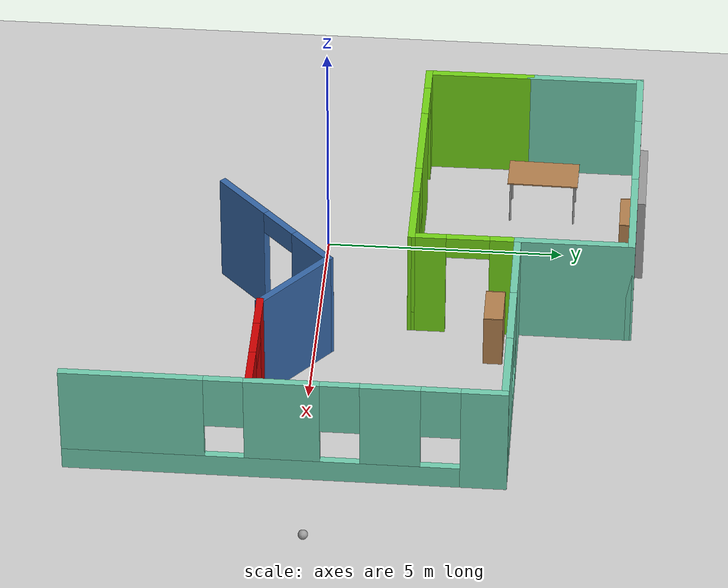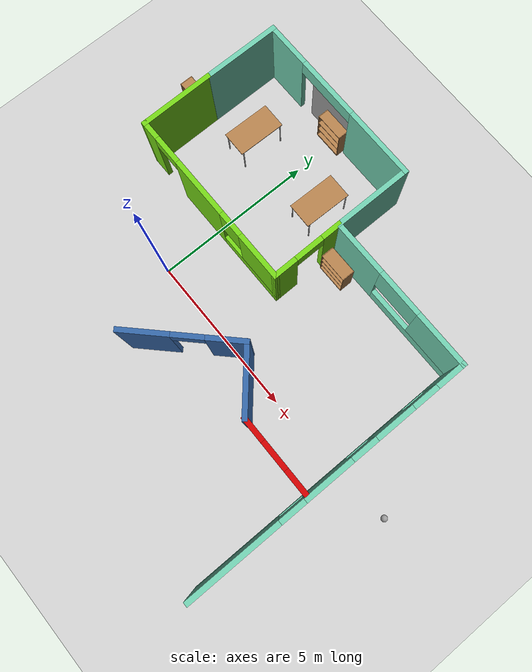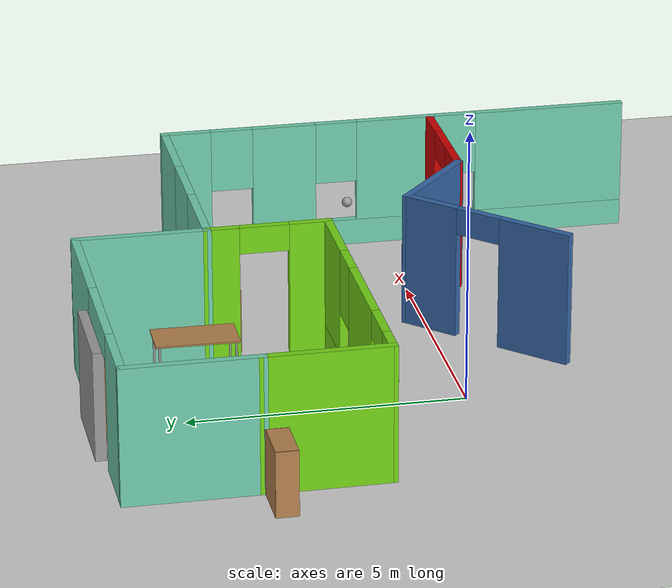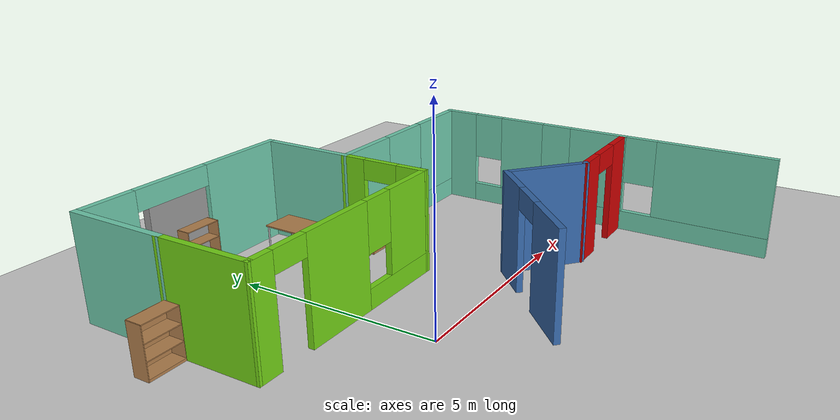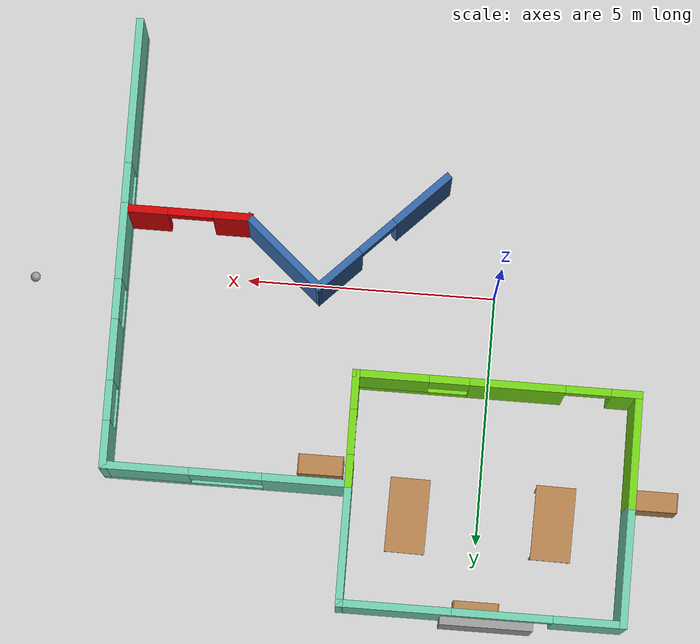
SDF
<sdf version="1.6">
 <world name="default">
  <model name="ground_plane">
   <static>1</static>
   <link name="link">
    <collision name="collision">
     <geometry><plane><normal>0 0 1</normal><size>100 100</size></plane></geometry>
     <surface>
      <contact><collide_bitmask>65535</collide_bitmask></contact>
      <friction><ode><mu>100</mu><mu2>50</mu2></ode></friction>
     </surface>
    </collision>
    <visual name="visual">
     <cast_shadows>0</cast_shadows>
     <geometry><plane><normal>0 0 1</normal><size>100 100</size></plane></geometry>
     <material>
      <script><uri>file://media/materials/scripts/gazebo.material</uri><name>Gazebo/Grey</name></script>
     </material>
    </visual>
   </link>
  </model>
  <model name="model">
   <pose>-1.34408 -2.0758 0 0 -0 0</pose>
   <link name="Door_1">
    <collision name="Door_1_Collision">
     <geometry><box><size>1.8483 0.2 2</size></box></geometry>
     <pose>0 0 1 0 -0 0</pose>
    </collision>
    <visual name="Door_1_Visual">
     <pose>0 0 1 0 -0 0</pose>
     <geometry><box><size>1.8483 0.2 2</size></box></geometry>
     <material>
      <script><uri>file://media/materials/scripts/gazebo.material</uri><name>Gazebo/Grey</name></script>
     </material>
    </visual>
    <pose>1.0621 8.71185 0 0 -0 0</pose>
   </link>
   <link name="Wall_10">
    <pose>6.41224 6.21961 0 0 -0 0</pose>
    <visual name="Wall_10_Visual_0">
     <pose>-1.6072 0 1.25 0 -0 0</pose>
     <geometry><box><size>1.78559 0.15 2.5</size></box></geometry>
     <material>
      <script><uri>file://media/materials/scripts/gazebo.material</uri><name>Gazebo/Grey</name></script>
      <ambient>0.435294 0.796078 0.67451 1</ambient>
     </material>
     <meta><layer>0</layer></meta>
    </visual>
    <collision name="Wall_10_Collision_0">
     <geometry><box><size>1.78559 0.15 2.5</size></box></geometry>
     <pose>-1.6072 0 1.25 0 -0 0</pose>
    </collision>
    <visual name="Wall_10_Visual_1">
     <pose>0.892797 0 0.25 0 -0 0</pose>
     <geometry><box><size>3.21441 0.15 0.5</size></box></geometry>
     <material>
      <script><uri>file://media/materials/scripts/gazebo.material</uri><name>Gazebo/Grey</name></script>
      <ambient>0.435294 0.796078 0.67451 1</ambient>
     </material>
     <meta><layer>0</layer></meta>
    </visual>
    <collision name="Wall_10_Collision_1">
     <geometry><box><size>3.21441 0.15 0.5</size></box></geometry>
     <pose>0.892797 0 0.25 0 -0 0</pose>
    </collision>
    <visual name="Wall_10_Visual_2">
     <pose>1.61399 0 1.5 0 -0 0</pose>
     <geometry><box><size>1.77201 0.15 2</size></box></geometry>
     <material>
      <script><uri>file://media/materials/scripts/gazebo.material</uri><name>Gazebo/Grey</name></script>
      <ambient>0.435294 0.796078 0.67451 1</ambient>
     </material>
     <meta><layer>0</layer></meta>
    </visual>
    <collision name="Wall_10_Collision_2">
     <geometry><box><size>1.77201 0.15 2</size></box></geometry>
     <pose>1.61399 0 1.5 0 -0 0</pose>
    </collision>
    <visual name="Wall_10_Visual_3">
     <pose>0.006791 0 1.9 0 -0 0</pose>
     <geometry><box><size>1.4424 0.15 1.2</size></box></geometry>
     <material>
      <script><uri>file://media/materials/scripts/gazebo.material</uri><name>Gazebo/Grey</name></script>
      <ambient>0.435294 0.796078 0.67451 1</ambient>
     </material>
     <meta><layer>0</layer></meta>
    </visual>
    <collision name="Wall_10_Collision_3">
     <geometry><box><size>1.4424 0.15 1.2</size></box></geometry>
     <pose>0.006791 0 1.9 0 -0 0</pose>
    </collision>
   </link>
   <link name="Wall_11">
    <pose>8.83724 1.79461 0 0 -0 -1.5708</pose>
    <visual name="Wall_11_Visual_0">
     <pose>-4.02485 0 1.25 0 -0 0</pose>
     <geometry><box><size>0.950301 0.15 2.5</size></box></geometry>
     <material>
      <script><uri>file://media/materials/scripts/gazebo.material</uri><name>Gazebo/Grey</name></script>
      <ambient>0.435294 0.796078 0.67451 1</ambient>
     </material>
     <meta><layer>0</layer></meta>
    </visual>
    <collision name="Wall_11_Collision_0">
     <geometry><box><size>0.950301 0.15 2.5</size></box></geometry>
     <pose>-4.02485 0 1.25 0 -0 0</pose>
    </collision>
    <visual name="Wall_11_Visual_1">
     <pose>0.47515 0 0.25 0 -0 0</pose>
     <geometry><box><size>8.0497 0.15 0.5</size></box></geometry>
     <material>
      <script><uri>file://media/materials/scripts/gazebo.material</uri><name>Gazebo/Grey</name></script>
      <ambient>0.435294 0.796078 0.67451 1</ambient>
     </material>
     <meta><layer>0</layer></meta>
    </visual>
    <collision name="Wall_11_Collision_1">
     <geometry><box><size>8.0497 0.15 0.5</size></box></geometry>
     <pose>0.47515 0 0.25 0 -0 0</pose>
    </collision>
    <visual name="Wall_11_Visual_2">
     <pose>-2.14022 0 1.5 0 -0 0</pose>
     <geometry><box><size>1.21896 0.15 2</size></box></geometry>
     <material>
      <script><uri>file://media/materials/scripts/gazebo.material</uri><name>Gazebo/Grey</name></script>
      <ambient>0.435294 0.796078 0.67451 1</ambient>
     </material>
     <meta><layer>0</layer></meta>
    </visual>
    <collision name="Wall_11_Collision_2">
     <geometry><box><size>1.21896 0.15 2</size></box></geometry>
     <pose>-2.14022 0 1.5 0 -0 0</pose>
    </collision>
    <visual name="Wall_11_Visual_3">
     <pose>0.031685 0 1.5 0 -0 0</pose>
     <geometry><box><size>1.52486 0.15 2</size></box></geometry>
     <material>
      <script><uri>file://media/materials/scripts/gazebo.material</uri><name>Gazebo/Grey</name></script>
      <ambient>0.435294 0.796078 0.67451 1</ambient>
     </material>
     <meta><layer>0</layer></meta>
    </visual>
    <collision name="Wall_11_Collision_3">
     <geometry><box><size>1.52486 0.15 2</size></box></geometry>
     <pose>0.031685 0 1.5 0 -0 0</pose>
    </collision>
    <visual name="Wall_11_Visual_4">
     <pose>3.04706 0 1.5 0 -0 0</pose>
     <geometry><box><size>2.90589 0.15 2</size></box></geometry>
     <material>
      <script><uri>file://media/materials/scripts/gazebo.material</uri><name>Gazebo/Grey</name></script>
      <ambient>0.435294 0.796078 0.67451 1</ambient>
     </material>
     <meta><layer>0</layer></meta>
    </visual>
    <collision name="Wall_11_Collision_4">
     <geometry><box><size>2.90589 0.15 2</size></box></geometry>
     <pose>3.04706 0 1.5 0 -0 0</pose>
    </collision>
    <visual name="Wall_11_Visual_5">
     <pose>-3.1497 0 1.9 0 -0 0</pose>
     <geometry><box><size>0.8 0.15 1.2</size></box></geometry>
     <material>
      <script><uri>file://media/materials/scripts/gazebo.material</uri><name>Gazebo/Grey</name></script>
      <ambient>0.435294 0.796078 0.67451 1</ambient>
     </material>
     <meta><layer>0</layer></meta>
    </visual>
    <collision name="Wall_11_Collision_5">
     <geometry><box><size>0.8 0.15 1.2</size></box></geometry>
     <pose>-3.1497 0 1.9 0 -0 0</pose>
    </collision>
    <visual name="Wall_11_Visual_6">
     <pose>-1.13074 0 1.9 0 -0 0</pose>
     <geometry><box><size>0.8 0.15 1.2</size></box></geometry>
     <material>
      <script><uri>file://media/materials/scripts/gazebo.material</uri><name>Gazebo/Grey</name></script>
      <ambient>0.435294 0.796078 0.67451 1</ambient>
     </material>
     <meta><layer>0</layer></meta>
    </visual>
    <collision name="Wall_11_Collision_6">
     <geometry><box><size>0.8 0.15 1.2</size></box></geometry>
     <pose>-1.13074 0 1.9 0 -0 0</pose>
    </collision>
    <visual name="Wall_11_Visual_7">
     <pose>1.19411 0 1.9 0 -0 0</pose>
     <geometry><box><size>0.8 0.15 1.2</size></box></geometry>
     <material>
      <script><uri>file://media/materials/scripts/gazebo.material</uri><name>Gazebo/Grey</name></script>
      <ambient>0.435294 0.796078 0.67451 1</ambient>
     </material>
     <meta><layer>0</layer></meta>
    </visual>
    <collision name="Wall_11_Collision_7">
     <geometry><box><size>0.8 0.15 1.2</size></box></geometry>
     <pose>1.19411 0 1.9 0 -0 0</pose>
    </collision>
   </link>
   <link name="Wall_35">
    <pose>3.69031 1.19128 0 0 -0 0.785398</pose>
    <visual name="Wall_35_Visual_0">
     <pose>-1.02961 0 1.25 0 -0 0</pose>
     <geometry><box><size>1.44079 0.15 2.5</size></box></geometry>
     <material>
      <script><uri>file://media/materials/scripts/gazebo.material</uri><name>Gazebo/Grey</name></script>
      <ambient>0.203922 0.396078 0.643137 1</ambient>
     </material>
     <meta><layer>0</layer></meta>
    </visual>
    <collision name="Wall_35_Collision_0">
     <geometry><box><size>1.44079 0.15 2.5</size></box></geometry>
     <pose>-1.02961 0 1.25 0 -0 0</pose>
    </collision>
    <visual name="Wall_35_Visual_1">
     <pose>1.17039 0 1.25 0 -0 0</pose>
     <geometry><box><size>1.15921 0.15 2.5</size></box></geometry>
     <material>
      <script><uri>file://media/materials/scripts/gazebo.material</uri><name>Gazebo/Grey</name></script>
      <ambient>0.203922 0.396078 0.643137 1</ambient>
     </material>
     <meta><layer>0</layer></meta>
    </visual>
    <collision name="Wall_35_Collision_1">
     <geometry><box><size>1.15921 0.15 2.5</size></box></geometry>
     <pose>1.17039 0 1.25 0 -0 0</pose>
    </collision>
    <visual name="Wall_35_Visual_2">
     <pose>0.140787 0 2.25 0 -0 0</pose>
     <geometry><box><size>0.9 0.15 0.5</size></box></geometry>
     <material>
      <script><uri>file://media/materials/scripts/gazebo.material</uri><name>Gazebo/Grey</name></script>
      <ambient>0.203922 0.396078 0.643137 1</ambient>
     </material>
     <meta><layer>0</layer></meta>
    </visual>
    <collision name="Wall_35_Collision_2">
     <geometry><box><size>0.9 0.15 0.5</size></box></geometry>
     <pose>0.140787 0 2.25 0 -0 0</pose>
    </collision>
   </link>
   <link name="Wall_37">
    <pose>1.19907 4.02731 0 0 -0 0</pose>
    <visual name="Wall_37_Visual_0">
     <pose>-2.56055 0 1.25 0 -0 0</pose>
     <geometry><box><size>0.628904 0.15 2.5</size></box></geometry>
     <material>
      <script><uri>file://media/materials/scripts/gazebo.material</uri><name>Gazebo/Grey</name></script>
      <ambient>0.45098 0.823529 0.0862745 1</ambient>
     </material>
     <meta><layer>0</layer></meta>
    </visual>
    <collision name="Wall_37_Collision_0">
     <geometry><box><size>0.628904 0.15 2.5</size></box></geometry>
     <pose>-2.56055 0 1.25 0 -0 0</pose>
    </collision>
    <visual name="Wall_37_Visual_1">
     <pose>-0.397199 0 1.25 0 -0 0</pose>
     <geometry><box><size>1.89779 0.15 2.5</size></box></geometry>
     <material>
      <script><uri>file://media/materials/scripts/gazebo.material</uri><name>Gazebo/Grey</name></script>
      <ambient>0.45098 0.823529 0.0862745 1</ambient>
     </material>
     <meta><layer>0</layer></meta>
    </visual>
    <collision name="Wall_37_Collision_1">
     <geometry><box><size>1.89779 0.15 2.5</size></box></geometry>
     <pose>-0.397199 0 1.25 0 -0 0</pose>
    </collision>
    <visual name="Wall_37_Visual_2">
     <pose>1.71335 0 0.25 0 -0 0</pose>
     <geometry><box><size>2.3233 0.15 0.5</size></box></geometry>
     <material>
      <script><uri>file://media/materials/scripts/gazebo.material</uri><name>Gazebo/Grey</name></script>
      <ambient>0.45098 0.823529 0.0862745 1</ambient>
     </material>
     <meta><layer>0</layer></meta>
    </visual>
    <collision name="Wall_37_Collision_2">
     <geometry><box><size>2.3233 0.15 0.5</size></box></geometry>
     <pose>1.71335 0 0.25 0 -0 0</pose>
    </collision>
    <visual name="Wall_37_Visual_3">
     <pose>2.11335 0 1.5 0 -0 0</pose>
     <geometry><box><size>1.5233 0.15 2</size></box></geometry>
     <material>
      <script><uri>file://media/materials/scripts/gazebo.material</uri><name>Gazebo/Grey</name></script>
      <ambient>0.45098 0.823529 0.0862745 1</ambient>
     </material>
     <meta><layer>0</layer></meta>
    </visual>
    <collision name="Wall_37_Collision_3">
     <geometry><box><size>1.5233 0.15 2</size></box></geometry>
     <pose>2.11335 0 1.5 0 -0 0</pose>
    </collision>
    <visual name="Wall_37_Visual_4">
     <pose>0.951698 0 1.9 0 -0 0</pose>
     <geometry><box><size>0.8 0.15 1.2</size></box></geometry>
     <material>
      <script><uri>file://media/materials/scripts/gazebo.material</uri><name>Gazebo/Grey</name></script>
      <ambient>0.45098 0.823529 0.0862745 1</ambient>
     </material>
     <meta><layer>0</layer></meta>
    </visual>
    <collision name="Wall_37_Collision_4">
     <geometry><box><size>0.8 0.15 1.2</size></box></geometry>
     <pose>0.951698 0 1.9 0 -0 0</pose>
    </collision>
    <visual name="Wall_37_Visual_5">
     <pose>-1.7961 0 2.25 0 -0 0</pose>
     <geometry><box><size>0.9 0.15 0.5</size></box></geometry>
     <material>
      <script><uri>file://media/materials/scripts/gazebo.material</uri><name>Gazebo/Grey</name></script>
      <ambient>0.45098 0.823529 0.0862745 1</ambient>
     </material>
     <meta><layer>0</layer></meta>
    </visual>
    <collision name="Wall_37_Collision_5">
     <geometry><box><size>0.9 0.15 0.5</size></box></geometry>
     <pose>-1.7961 0 2.25 0 -0 0</pose>
    </collision>
   </link>
   <link name="Wall_38">
    <pose>3.99316 5.12346 0 0 -0 1.57619</pose>
    <visual name="Wall_38_Visual_0">
     <pose>-0.775994 0 1.25 0 -0 0</pose>
     <geometry><box><size>0.790336 0.15 2.5</size></box></geometry>
     <material>
      <script><uri>file://media/materials/scripts/gazebo.material</uri><name>Gazebo/Grey</name></script>
      <ambient>0.45098 0.823529 0.0862745 1</ambient>
     </material>
     <meta><layer>0</layer></meta>
    </visual>
    <collision name="Wall_38_Collision_0">
     <geometry><box><size>0.790336 0.15 2.5</size></box></geometry>
     <pose>-0.775994 0 1.25 0 -0 0</pose>
    </collision>
    <visual name="Wall_38_Visual_1">
     <pose>0.845168 0 1.25 0 -0 0</pose>
     <geometry><box><size>0.651988 0.15 2.5</size></box></geometry>
     <material>
      <script><uri>file://media/materials/scripts/gazebo.material</uri><name>Gazebo/Grey</name></script>
      <ambient>0.45098 0.823529 0.0862745 1</ambient>
     </material>
     <meta><layer>0</layer></meta>
    </visual>
    <collision name="Wall_38_Collision_1">
     <geometry><box><size>0.651988 0.15 2.5</size></box></geometry>
     <pose>0.845168 0 1.25 0 -0 0</pose>
    </collision>
    <visual name="Wall_38_Visual_2">
     <pose>0.069174 0 2.25 0 -0 0</pose>
     <geometry><box><size>0.9 0.15 0.5</size></box></geometry>
     <material>
      <script><uri>file://media/materials/scripts/gazebo.material</uri><name>Gazebo/Grey</name></script>
      <ambient>0.45098 0.823529 0.0862745 1</ambient>
     </material>
     <meta><layer>0</layer></meta>
    </visual>
    <collision name="Wall_38_Collision_2">
     <geometry><box><size>0.9 0.15 0.5</size></box></geometry>
     <pose>0.069174 0 2.25 0 -0 0</pose>
    </collision>
   </link>
   <link name="Wall_40">
    <pose>7.52447 1.10748 0 0 -0 0</pose>
    <visual name="Wall_40_Visual_0">
     <pose>-0.852595 0 1.25 0 -0 0</pose>
     <geometry><box><size>0.794811 0.15 2.5</size></box></geometry>
     <material>
      <script><uri>file://media/materials/scripts/gazebo.material</uri><name>Gazebo/Grey</name></script>
      <ambient>0.8 0 0 1</ambient>
     </material>
     <meta><layer>0</layer></meta>
    </visual>
    <collision name="Wall_40_Collision_0">
     <geometry><box><size>0.794811 0.15 2.5</size></box></geometry>
     <pose>-0.852595 0 1.25 0 -0 0</pose>
    </collision>
    <visual name="Wall_40_Visual_1">
     <pose>0.847405 0 1.25 0 -0 0</pose>
     <geometry><box><size>0.805189 0.15 2.5</size></box></geometry>
     <material>
      <script><uri>file://media/materials/scripts/gazebo.material</uri><name>Gazebo/Grey</name></script>
      <ambient>0.8 0 0 1</ambient>
     </material>
     <meta><layer>0</layer></meta>
    </visual>
    <collision name="Wall_40_Collision_1">
     <geometry><box><size>0.805189 0.15 2.5</size></box></geometry>
     <pose>0.847405 0 1.25 0 -0 0</pose>
    </collision>
    <visual name="Wall_40_Visual_2">
     <pose>-0.005189 0 2.25 0 -0 0</pose>
     <geometry><box><size>0.9 0.15 0.5</size></box></geometry>
     <material>
      <script><uri>file://media/materials/scripts/gazebo.material</uri><name>Gazebo/Grey</name></script>
      <ambient>0.8 0 0 1</ambient>
     </material>
     <meta><layer>0</layer></meta>
    </visual>
    <collision name="Wall_40_Collision_2">
     <geometry><box><size>0.9 0.15 0.5</size></box></geometry>
     <pose>-0.005189 0 2.25 0 -0 0</pose>
    </collision>
   </link>
   <link name="Wall_45">
    <collision name="Wall_45_Collision">
     <geometry><box><size>2.09505 0.15 2.5</size></box></geometry>
     <pose>0 0 1.25 0 -0 0</pose>
    </collision>
    <visual name="Wall_45_Visual">
     <pose>0 0 1.25 0 -0 0</pose>
     <geometry><box><size>2.09505 0.15 2.5</size></box></geometry>
     <material>
      <script><uri>file://media/materials/scripts/gazebo.material</uri><name>Gazebo/Grey</name></script>
      <ambient>0.203922 0.396078 0.643137 1</ambient>
     </material>
     <meta><layer>0</layer></meta>
    </visual>
    <pose>5.6121 1.74158 0 0 -0 2.43136</pose>
   </link>
   <link name="Wall_67">
    <collision name="Wall_67_Collision">
     <geometry><box><size>2.34232 0.15 2.5</size></box></geometry>
     <pose>0 0 1.25 0 -0 0</pose>
    </collision>
    <visual name="Wall_67_Visual">
     <pose>0 0 1.25 0 -0 0</pose>
     <geometry><box><size>2.34232 0.15 2.5</size></box></geometry>
     <material>
      <script><uri>file://media/materials/scripts/gazebo.material</uri><name>Gazebo/Grey</name></script>
      <ambient>0.45098 0.823529 0.0862745 1</ambient>
     </material>
     <meta><layer>0</layer></meta>
    </visual>
    <pose>-1.60684 5.12346 0 0 -0 -1.5654</pose>
   </link>
   <link name="Wall_7">
    <collision name="Wall_7_Collision">
     <geometry><box><size>2.5 0.15 2.5</size></box></geometry>
     <pose>0 0 1.25 0 -0 0</pose>
    </collision>
    <visual name="Wall_7_Visual">
     <pose>0 0 1.25 0 -0 0</pose>
     <geometry><box><size>2.5 0.15 2.5</size></box></geometry>
     <material>
      <script><uri>file://media/materials/scripts/gazebo.material</uri><name>Gazebo/Grey</name></script>
      <ambient>0.435294 0.796078 0.67451 1</ambient>
     </material>
     <meta><layer>0</layer></meta>
    </visual>
    <pose>-1.61276 7.39461 0 0 -0 1.5708</pose>
   </link>
   <link name="Wall_8">
    <pose>1.18724 8.56961 0 0 -0 0</pose>
    <visual name="Wall_8_Visual_0">
     <pose>-2.14386 0 1.25 0 -0 0</pose>
     <geometry><box><size>1.46227 0.15 2.5</size></box></geometry>
     <material>
      <script><uri>file://media/materials/scripts/gazebo.material</uri><name>Gazebo/Grey</name></script>
      <ambient>0.435294 0.796078 0.67451 1</ambient>
     </material>
     <meta><layer>0</layer></meta>
    </visual>
    <collision name="Wall_8_Collision_0">
     <geometry><box><size>1.46227 0.15 2.5</size></box></geometry>
     <pose>-2.14386 0 1.25 0 -0 0</pose>
    </collision>
    <visual name="Wall_8_Visual_1">
     <pose>1.73176 0 1.25 0 -0 0</pose>
     <geometry><box><size>2.28648 0.15 2.5</size></box></geometry>
     <material>
      <script><uri>file://media/materials/scripts/gazebo.material</uri><name>Gazebo/Grey</name></script>
      <ambient>0.435294 0.796078 0.67451 1</ambient>
     </material>
     <meta><layer>0</layer></meta>
    </visual>
    <collision name="Wall_8_Collision_1">
     <geometry><box><size>2.28648 0.15 2.5</size></box></geometry>
     <pose>1.73176 0 1.25 0 -0 0</pose>
    </collision>
    <visual name="Wall_8_Visual_2">
     <pose>-0.412106 0 2.25 0 -0 0</pose>
     <geometry><box><size>2.00125 0.15 0.5</size></box></geometry>
     <material>
      <script><uri>file://media/materials/scripts/gazebo.material</uri><name>Gazebo/Grey</name></script>
      <ambient>0.435294 0.796078 0.67451 1</ambient>
     </material>
     <meta><layer>0</layer></meta>
    </visual>
    <collision name="Wall_8_Collision_2">
     <geometry><box><size>2.00125 0.15 0.5</size></box></geometry>
     <pose>-0.412106 0 2.25 0 -0 0</pose>
    </collision>
   </link>
   <link name="Wall_9">
    <collision name="Wall_9_Collision">
     <geometry><box><size>2.5 0.15 2.5</size></box></geometry>
     <pose>0 0 1.25 0 -0 0</pose>
    </collision>
    <visual name="Wall_9_Visual">
     <pose>0 0 1.25 0 -0 0</pose>
     <geometry><box><size>2.5 0.15 2.5</size></box></geometry>
     <material>
      <script><uri>file://media/materials/scripts/gazebo.material</uri><name>Gazebo/Grey</name></script>
      <ambient>0.435294 0.796078 0.67451 1</ambient>
     </material>
     <meta><layer>0</layer></meta>
    </visual>
    <pose>3.98724 7.39461 0 0 -0 -1.5708</pose>
   </link>
   <static>1</static>
  </model>
  <model name="bookshelf">
   <static>1</static>
   <link name="link">
    <inertial><mass>1</mass></inertial>
    <collision name="back">
     <pose>0 0.005 0.6 0 -0 0</pose>
     <geometry><box><size>0.9 0.01 1.2</size></box></geometry>
    </collision>
    <visual name="visual1">
     <pose>0 0.005 0.6 0 -0 0</pose>
     <geometry><box><size>0.9 0.01 1.2</size></box></geometry>
     <material>
      <script><uri>file://media/materials/scripts/gazebo.material</uri><name>Gazebo/Wood</name></script>
     </material>
    </visual>
    <collision name="left_side">
     <pose>0.45 -0.195 0.6 0 -0 0</pose>
     <geometry><box><size>0.02 0.4 1.2</size></box></geometry>
    </collision>
    <visual name="visual2">
     <pose>0.45 -0.195 0.6 0 -0 0</pose>
     <geometry><box><size>0.02 0.4 1.2</size></box></geometry>
     <material>
      <script><uri>file://media/materials/scripts/gazebo.material</uri><name>Gazebo/Wood</name></script>
     </material>
    </visual>
    <collision name="right_side">
     <pose>-0.45 -0.195 0.6 0 -0 0</pose>
     <geometry><box><size>0.02 0.4 1.2</size></box></geometry>
    </collision>
    <visual name="visual3">
     <pose>-0.45 -0.195 0.6 0 -0 0</pose>
     <geometry><box><size>0.02 0.4 1.2</size></box></geometry>
     <material>
      <script><uri>file://media/materials/scripts/gazebo.material</uri><name>Gazebo/Wood</name></script>
     </material>
    </visual>
    <collision name="bottom">
     <pose>0 -0.195 0.03 0 -0 0</pose>
     <geometry><box><size>0.88 0.4 0.06</size></box></geometry>
    </collision>
    <visual name="visual4">
     <pose>0 -0.195 0.03 0 -0 0</pose>
     <geometry><box><size>0.88 0.4 0.06</size></box></geometry>
     <material>
      <script><uri>file://media/materials/scripts/gazebo.material</uri><name>Gazebo/Wood</name></script>
     </material>
    </visual>
    <collision name="top">
     <pose>0 -0.195 1.19 0 -0 0</pose>
     <geometry><box><size>0.88 0.4 0.02</size></box></geometry>
    </collision>
    <visual name="visual5">
     <pose>0 -0.195 1.19 0 -0 0</pose>
     <geometry><box><size>0.88 0.4 0.02</size></box></geometry>
     <material>
      <script><uri>file://media/materials/scripts/gazebo.material</uri><name>Gazebo/Wood</name></script>
     </material>
    </visual>
    <collision name="low_shelf">
     <pose>0 -0.195 0.43 0 -0 0</pose>
     <geometry><box><size>0.88 0.4 0.02</size></box></geometry>
    </collision>
    <visual name="visual6">
     <pose>0 -0.195 0.43 0 -0 0</pose>
     <geometry><box><size>0.88 0.4 0.02</size></box></geometry>
     <material>
      <script><uri>file://media/materials/scripts/gazebo.material</uri><name>Gazebo/Wood</name></script>
     </material>
    </visual>
    <collision name="high_shelf">
     <pose>0 -0.195 0.8 0 -0 0</pose>
     <geometry><box><size>0.88 0.4 0.02</size></box></geometry>
    </collision>
    <visual name="visual7">
     <pose>0 -0.195 0.8 0 -0 0</pose>
     <geometry><box><size>0.88 0.4 0.02</size></box></geometry>
     <material>
      <script><uri>file://media/materials/scripts/gazebo.material</uri><name>Gazebo/Wood</name></script>
     </material>
    </visual>
   </link>
   <pose>-0.07448 6.59557 0 0 -0 0</pose>
  </model>
  <model name="bookshelf_0">
   <static>1</static>
   <link name="link">
    <inertial><mass>1</mass></inertial>
    <collision name="back">
     <pose>0 0.005 0.6 0 -0 0</pose>
     <geometry><box><size>0.9 0.01 1.2</size></box></geometry>
    </collision>
    <visual name="visual1">
     <pose>0 0.005 0.6 0 -0 0</pose>
     <geometry><box><size>0.9 0.01 1.2</size></box></geometry>
     <material>
      <script><uri>file://media/materials/scripts/gazebo.material</uri><name>Gazebo/Wood</name></script>
     </material>
    </visual>
    <collision name="left_side">
     <pose>0.45 -0.195 0.6 0 -0 0</pose>
     <geometry><box><size>0.02 0.4 1.2</size></box></geometry>
    </collision>
    <visual name="visual2">
     <pose>0.45 -0.195 0.6 0 -0 0</pose>
     <geometry><box><size>0.02 0.4 1.2</size></box></geometry>
     <material>
      <script><uri>file://media/materials/scripts/gazebo.material</uri><name>Gazebo/Wood</name></script>
     </material>
    </visual>
    <collision name="right_side">
     <pose>-0.45 -0.195 0.6 0 -0 0</pose>
     <geometry><box><size>0.02 0.4 1.2</size></box></geometry>
    </collision>
    <visual name="visual3">
     <pose>-0.45 -0.195 0.6 0 -0 0</pose>
     <geometry><box><size>0.02 0.4 1.2</size></box></geometry>
     <material>
      <script><uri>file://media/materials/scripts/gazebo.material</uri><name>Gazebo/Wood</name></script>
     </material>
    </visual>
    <collision name="bottom">
     <pose>0 -0.195 0.03 0 -0 0</pose>
     <geometry><box><size>0.88 0.4 0.06</size></box></geometry>
    </collision>
    <visual name="visual4">
     <pose>0 -0.195 0.03 0 -0 0</pose>
     <geometry><box><size>0.88 0.4 0.06</size></box></geometry>
     <material>
      <script><uri>file://media/materials/scripts/gazebo.material</uri><name>Gazebo/Wood</name></script>
     </material>
    </visual>
    <collision name="top">
     <pose>0 -0.195 1.19 0 -0 0</pose>
     <geometry><box><size>0.88 0.4 0.02</size></box></geometry>
    </collision>
    <visual name="visual5">
     <pose>0 -0.195 1.19 0 -0 0</pose>
     <geometry><box><size>0.88 0.4 0.02</size></box></geometry>
     <material>
      <script><uri>file://media/materials/scripts/gazebo.material</uri><name>Gazebo/Wood</name></script>
     </material>
    </visual>
    <collision name="low_shelf">
     <pose>0 -0.195 0.43 0 -0 0</pose>
     <geometry><box><size>0.88 0.4 0.02</size></box></geometry>
    </collision>
    <visual name="visual6">
     <pose>0 -0.195 0.43 0 -0 0</pose>
     <geometry><box><size>0.88 0.4 0.02</size></box></geometry>
     <material>
      <script><uri>file://media/materials/scripts/gazebo.material</uri><name>Gazebo/Wood</name></script>
     </material>
    </visual>
    <collision name="high_shelf">
     <pose>0 -0.195 0.8 0 -0 0</pose>
     <geometry><box><size>0.88 0.4 0.02</size></box></geometry>
    </collision>
    <visual name="visual7">
     <pose>0 -0.195 0.8 0 -0 0</pose>
     <geometry><box><size>0.88 0.4 0.02</size></box></geometry>
     <material>
      <script><uri>file://media/materials/scripts/gazebo.material</uri><name>Gazebo/Wood</name></script>
     </material>
    </visual>
   </link>
   <pose>3.22894 3.91282 0 0 -0 0</pose>
  </model>
  <model name="bookshelf_1">
   <static>1</static>
   <link name="link">
    <inertial><mass>1</mass></inertial>
    <collision name="back">
     <pose>0 0.005 0.6 0 -0 0</pose>
     <geometry><box><size>0.9 0.01 1.2</size></box></geometry>
    </collision>
    <visual name="visual1">
     <pose>0 0.005 0.6 0 -0 0</pose>
     <geometry><box><size>0.9 0.01 1.2</size></box></geometry>
     <material>
      <script><uri>file://media/materials/scripts/gazebo.material</uri><name>Gazebo/Wood</name></script>
     </material>
    </visual>
    <collision name="left_side">
     <pose>0.45 -0.195 0.6 0 -0 0</pose>
     <geometry><box><size>0.02 0.4 1.2</size></box></geometry>
    </collision>
    <visual name="visual2">
     <pose>0.45 -0.195 0.6 0 -0 0</pose>
     <geometry><box><size>0.02 0.4 1.2</size></box></geometry>
     <material>
      <script><uri>file://media/materials/scripts/gazebo.material</uri><name>Gazebo/Wood</name></script>
     </material>
    </visual>
    <collision name="right_side">
     <pose>-0.45 -0.195 0.6 0 -0 0</pose>
     <geometry><box><size>0.02 0.4 1.2</size></box></geometry>
    </collision>
    <visual name="visual3">
     <pose>-0.45 -0.195 0.6 0 -0 0</pose>
     <geometry><box><size>0.02 0.4 1.2</size></box></geometry>
     <material>
      <script><uri>file://media/materials/scripts/gazebo.material</uri><name>Gazebo/Wood</name></script>
     </material>
    </visual>
    <collision name="bottom">
     <pose>0 -0.195 0.03 0 -0 0</pose>
     <geometry><box><size>0.88 0.4 0.06</size></box></geometry>
    </collision>
    <visual name="visual4">
     <pose>0 -0.195 0.03 0 -0 0</pose>
     <geometry><box><size>0.88 0.4 0.06</size></box></geometry>
     <material>
      <script><uri>file://media/materials/scripts/gazebo.material</uri><name>Gazebo/Wood</name></script>
     </material>
    </visual>
    <collision name="top">
     <pose>0 -0.195 1.19 0 -0 0</pose>
     <geometry><box><size>0.88 0.4 0.02</size></box></geometry>
    </collision>
    <visual name="visual5">
     <pose>0 -0.195 1.19 0 -0 0</pose>
     <geometry><box><size>0.88 0.4 0.02</size></box></geometry>
     <material>
      <script><uri>file://media/materials/scripts/gazebo.material</uri><name>Gazebo/Wood</name></script>
     </material>
    </visual>
    <collision name="low_shelf">
     <pose>0 -0.195 0.43 0 -0 0</pose>
     <geometry><box><size>0.88 0.4 0.02</size></box></geometry>
    </collision>
    <visual name="visual6">
     <pose>0 -0.195 0.43 0 -0 0</pose>
     <geometry><box><size>0.88 0.4 0.02</size></box></geometry>
     <material>
      <script><uri>file://media/materials/scripts/gazebo.material</uri><name>Gazebo/Wood</name></script>
     </material>
    </visual>
    <collision name="high_shelf">
     <pose>0 -0.195 0.8 0 -0 0</pose>
     <geometry><box><size>0.88 0.4 0.02</size></box></geometry>
    </collision>
    <visual name="visual7">
     <pose>0 -0.195 0.8 0 -0 0</pose>
     <geometry><box><size>0.88 0.4 0.02</size></box></geometry>
     <material>
      <script><uri>file://media/materials/scripts/gazebo.material</uri><name>Gazebo/Wood</name></script>
     </material>
    </visual>
   </link>
   <pose>-3.47757 4.12481 0 0 -0 0</pose>
  </model>
  <model name="table">
   <static>1</static>
   <link name="link">
    <collision name="surface">
     <pose>0 0 1 0 -0 0</pose>
     <geometry><box><size>1.5 0.8 0.03</size></box></geometry>
     <surface><friction><ode><mu>0.6</mu><mu2>0.6</mu2></ode></friction></surface>
    </collision>
    <visual name="visual1">
     <pose>0 0 1 0 -0 0</pose>
     <geometry><box><size>1.5 0.8 0.03</size></box></geometry>
     <material>
      <script><uri>file://media/materials/scripts/gazebo.material</uri><name>Gazebo/Wood</name></script>
     </material>
    </visual>
    <collision name="front_left_leg">
     <pose>0.68 0.38 0.5 0 -0 0</pose>
     <geometry><cylinder><radius>0.02</radius><length>1</length></cylinder></geometry>
    </collision>
    <visual name="front_left_leg">
     <pose>0.68 0.38 0.5 0 -0 0</pose>
     <geometry><cylinder><radius>0.02</radius><length>1</length></cylinder></geometry>
     <material>
      <script><uri>file://media/materials/scripts/gazebo.material</uri><name>Gazebo/Grey</name></script>
     </material>
    </visual>
    <collision name="front_right_leg">
     <pose>0.68 -0.38 0.5 0 -0 0</pose>
     <geometry><cylinder><radius>0.02</radius><length>1</length></cylinder></geometry>
    </collision>
    <visual name="front_right_leg">
     <pose>0.68 -0.38 0.5 0 -0 0</pose>
     <geometry><cylinder><radius>0.02</radius><length>1</length></cylinder></geometry>
     <material>
      <script><uri>file://media/materials/scripts/gazebo.material</uri><name>Gazebo/Grey</name></script>
     </material>
    </visual>
    <collision name="back_right_leg">
     <pose>-0.68 -0.38 0.5 0 -0 0</pose>
     <geometry><cylinder><radius>0.02</radius><length>1</length></cylinder></geometry>
    </collision>
    <visual name="back_right_leg">
     <pose>-0.68 -0.38 0.5 0 -0 0</pose>
     <geometry><cylinder><radius>0.02</radius><length>1</length></cylinder></geometry>
     <material>
      <script><uri>file://media/materials/scripts/gazebo.material</uri><name>Gazebo/Grey</name></script>
     </material>
    </visual>
    <collision name="back_left_leg">
     <pose>-0.68 0.38 0.5 0 -0 0</pose>
     <geometry><cylinder><radius>0.02</radius><length>1</length></cylinder></geometry>
    </collision>
    <visual name="back_left_leg">
     <pose>-0.68 0.38 0.5 0 -0 0</pose>
     <geometry><cylinder><radius>0.02</radius><length>1</length></cylinder></geometry>
     <material>
      <script><uri>file://media/materials/scripts/gazebo.material</uri><name>Gazebo/Grey</name></script>
     </material>
    </visual>
   </link>
   <pose>-1.4933 4.52132 0 0 -0 1.5552</pose>
  </model>
  <model name="table_clone">
   <static>1</static>
   <link name="link">
    <collision name="surface">
     <pose>0 0 1 0 -0 0</pose>
     <geometry><box><size>1.5 0.8 0.03</size></box></geometry>
     <surface><friction><ode><mu>0.6</mu><mu2>0.6</mu2></ode></friction></surface>
    </collision>
    <visual name="visual1">
     <pose>0 0 1 0 -0 0</pose>
     <geometry><box><size>1.5 0.8 0.03</size></box></geometry>
     <material>
      <script><uri>file://media/materials/scripts/gazebo.material</uri><name>Gazebo/Wood</name></script>
     </material>
    </visual>
    <collision name="front_left_leg">
     <pose>0.68 0.38 0.5 0 -0 0</pose>
     <geometry><cylinder><radius>0.02</radius><length>1</length></cylinder></geometry>
    </collision>
    <visual name="front_left_leg">
     <pose>0.68 0.38 0.5 0 -0 0</pose>
     <geometry><cylinder><radius>0.02</radius><length>1</length></cylinder></geometry>
     <material>
      <script><uri>file://media/materials/scripts/gazebo.material</uri><name>Gazebo/Grey</name></script>
     </material>
    </visual>
    <collision name="front_right_leg">
     <pose>0.68 -0.38 0.5 0 -0 0</pose>
     <geometry><cylinder><radius>0.02</radius><length>1</length></cylinder></geometry>
    </collision>
    <visual name="front_right_leg">
     <pose>0.68 -0.38 0.5 0 -0 0</pose>
     <geometry><cylinder><radius>0.02</radius><length>1</length></cylinder></geometry>
     <material>
      <script><uri>file://media/materials/scripts/gazebo.material</uri><name>Gazebo/Grey</name></script>
     </material>
    </visual>
    <collision name="back_right_leg">
     <pose>-0.68 -0.38 0.5 0 -0 0</pose>
     <geometry><cylinder><radius>0.02</radius><length>1</length></cylinder></geometry>
    </collision>
    <visual name="back_right_leg">
     <pose>-0.68 -0.38 0.5 0 -0 0</pose>
     <geometry><cylinder><radius>0.02</radius><length>1</length></cylinder></geometry>
     <material>
      <script><uri>file://media/materials/scripts/gazebo.material</uri><name>Gazebo/Grey</name></script>
     </material>
    </visual>
    <collision name="back_left_leg">
     <pose>-0.68 0.38 0.5 0 -0 0</pose>
     <geometry><cylinder><radius>0.02</radius><length>1</length></cylinder></geometry>
    </collision>
    <visual name="back_left_leg">
     <pose>-0.68 0.38 0.5 0 -0 0</pose>
     <geometry><cylinder><radius>0.02</radius><length>1</length></cylinder></geometry>
     <material>
      <script><uri>file://media/materials/scripts/gazebo.material</uri><name>Gazebo/Grey</name></script>
     </material>
    </visual>
   </link>
   <pose>1.42284 4.57977 0 0 -0 1.5552</pose>
  </model>
  <model name="my_ball">
   <link name="link_0">
    <pose>0.976211 -1.54384 0.5 0 -0 0</pose>
    <inertial>
     <mass>1</mass>
     <inertia><ixx>0.1</ixx><ixy>0</ixy><ixz>0</ixz><iyy>0.1</iyy><iyz>0</iyz><izz>0.1</izz></inertia>
    </inertial>
    <visual name="visual">
     <geometry><sphere><radius>0.1</radius></sphere></geometry>
     <material>
      <lighting>1</lighting>
      <script><uri>file://media/materials/scripts/gazebo.material</uri><name>Gazebo/Grey</name></script>
      <shader type="pixel"><normal_map>__default__</normal_map></shader>
      <ambient>1 1 1 1</ambient>
      <diffuse>1 1 1 1</diffuse>
      <specular>1 1 1 1</specular>
      <emissive>1 1 1 1</emissive>
     </material>
    </visual>
    <collision name="collision">
     <geometry><sphere><radius>0.1</radius></sphere></geometry>
     <surface>
      <friction>
       <ode><mu>1</mu><mu2>1</mu2><fdir1>0 0 0</fdir1><slip1>0</slip1><slip2>0</slip2></ode>
       <torsional>
        <coefficient>1</coefficient>
        <patch_radius>0</patch_radius>
        <surface_radius>0</surface_radius>
        <use_patch_radius>1</use_patch_radius>
        <ode><slip>0</slip></ode>
       </torsional>
      </friction>
      <bounce><restitution_coefficient>0</restitution_coefficient><threshold>1e+06</threshold></bounce>
      <contact>
       <collide_without_contact>0</collide_without_contact>
       <collide_without_contact_bitmask>1</collide_without_contact_bitmask>
       <collide_bitmask>1</collide_bitmask>
       <ode>
        <soft_cfm>0</soft_cfm>
        <soft_erp>0.2</soft_erp>
        <kp>1e+13</kp>
        <kd>1</kd>
        <max_vel>0.01</max_vel>
        <min_depth>0</min_depth>
       </ode>
       <bullet>
        <split_impulse>1</split_impulse>
        <split_impulse_penetration_threshold>-0.01</split_impulse_penetration_threshold>
        <soft_cfm>0</soft_cfm>
        <soft_erp>0.2</soft_erp>
        <kp>1e+13</kp>
        <kd>1</kd>
       </bullet>
      </contact>
     </surface>
    </collision>
   </link>
   <static>0</static>
   <pose>8.33924 1.80409 -0.4 0 -0 0</pose>
  </model>
 </world>
</sdf>
